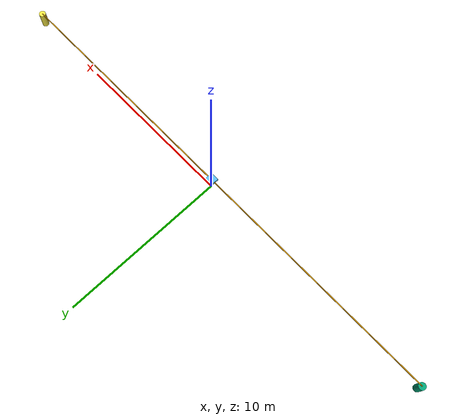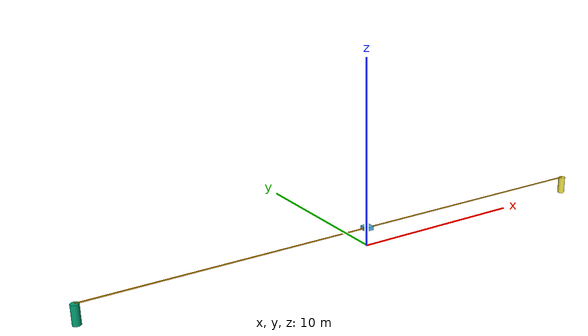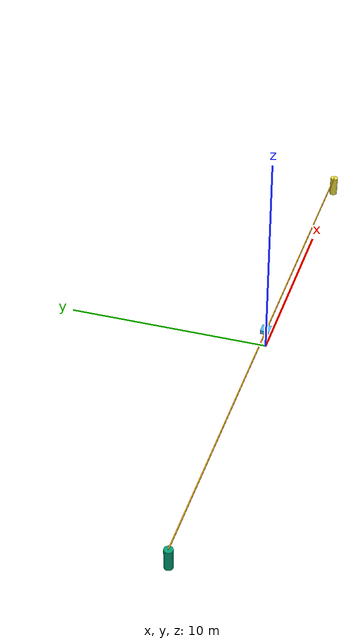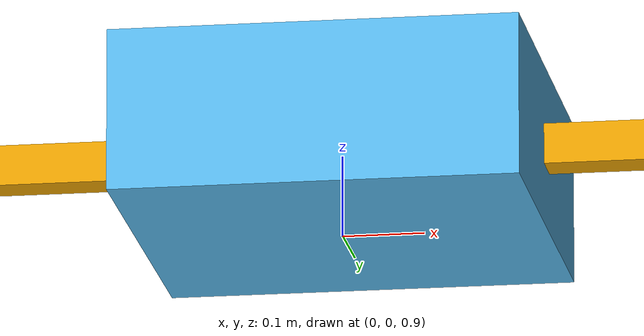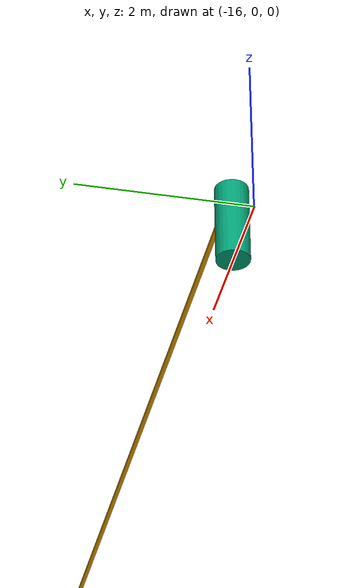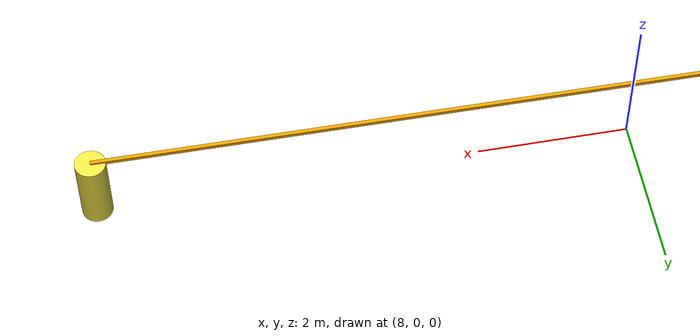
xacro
<?xml version="1.0"?>
<robot name="cartopole">
    <link name="slideBar">
        <visual>
            <geometry>
                <box size="30 0.05 0.05" />
            </geometry>
            <origin xyz="0 0 1" />
        </visual>
        <inertial>
            <mass value="100" />
            <inertia ixx="1.0" ixy="0.0" ixz="0.0" iyy="1.0" iyz="0.0" izz="1.0" />
        </inertial>
    </link>
    <link name="cart">
        <visual>
            <geometry>
                <box size="0.5 0.5 0.2" />
            </geometry>
            <origin xyz="0 0 1" />
        </visual>
        <inertial>
            <mass value="1" />
            <inertia ixx="1.0" ixy="0.0" ixz="0.0" iyy="1.0" iyz="0.0" izz="1.0" />
        </inertial>
    </link>

    <link name="leg1">
        <visual>
            <geometry>
                <cylinder radius="0.2" length="1.0" />
            </geometry>
            <origin xyz="0 0 0" />
        </visual>
        <collision>
            <geometry>
                <cylinder radius="0.2" length="1.0" />
            </geometry>
            <origin xyz="0 0 0" />
        </collision>
        <inertial>
            <mass value="1" />
            <inertia ixx="1.0" ixy="0.0" ixz="0.0" iyy="1.0" iyz="0.0" izz="1.0" />
        </inertial>
    </link>

    <link name="leg2">
        <visual>
            <geometry>
                <cylinder radius="0.2" length="1.0" />
            </geometry>
            <origin xyz="0 0 0" />
        </visual>
        <collision>
            <geometry>
                <cylinder radius="0.2" length="1.0" />
            </geometry>
            <origin xyz="0 0 0" />
        </collision>
        <inertial>
            <mass value="1" />
            <inertia ixx="1.0" ixy="0.0" ixz="0.0" iyy="1.0" iyz="0.0" izz="1.0" />
        </inertial>
    </link>

    <joint name="slider_to_cart" type="prismatic">
        <axis xyz="1 0 0" />
        <origin xyz="0.0 0.0 0.0" />
        <parent link="slideBar" />
        <child link="cart" />
        <limit effort="1000.0" lower="-15" upper="15" velocity="30" />
        <dynamics damping="0.0" friction="0.0" />
    </joint>
    <link name="imu">
        <inertial>
            <mass value="0.1" />
            <inertia ixx="1.0" ixy="0" ixz="0" iyy="1.0" iyz="0" izz="1.0" />
        </inertial>
    </link>
    <joint name="cart_to_imu" type="fixed">
        <origin xyz="0.0 0.0 0.0" />
        <parent link="cart" />
        <child link="imu" />
        <dynamics damping="0.0" friction="0.0" />
    </joint>

    <joint name="slider_to_leg1" type="fixed">
        <origin xyz="-15.0 0.0 0.5" />
        <parent link="slideBar" />
        <child link="leg1" />
        <dynamics damping="0.0" friction="0.0" />
    </joint>

    <joint name="slider_to_leg2" type="fixed">
        <origin xyz="15 0.0 0.5" />
        <parent link="slideBar" />
        <child link="leg2" />
        <dynamics damping="0.0" friction="0.0" />
    </joint>

    <gazebo reference="imu">
        <sensor name="cart_imu_sensor" type="imu">
            <always_on>1</always_on>
            <update_rate>10.0</update_rate>
            <visualize>true</visualize>
            <topic>imu</topic>
        </sensor>
    </gazebo>

    <ros2_control name="IgnitionSystem" type="system">
        <hardware>
            <plugin>ign_ros2_control/IgnitionSystem</plugin>
        </hardware>
        <joint name="slider_to_cart">
            <command_interface name="velocity">
                <param name="min">-15</param>
                <param name="max">15</param>
            </command_interface>
            <state_interface name="position" />
            <state_interface name="velocity" />
            <state_interface name="effort" />
        </joint>
        <sensor name="cart_imu_sensor">
            <state_interface name="orientation.x" />
            <state_interface name="orientation.y" />
            <state_interface name="orientation.z" />
            <state_interface name="orientation.w" />
            <state_interface name="angular_velocity.x" />
            <state_interface name="angular_velocity.y" />
            <state_interface name="angular_velocity.z" />
            <state_interface name="linear_acceleration.x" />
            <state_interface name="linear_acceleration.y" />
            <state_interface name="linear_acceleration.z" />
        </sensor>
    </ros2_control>

    <gazebo reference="slideBar">
        <visual>
            <material>
                <ambient>0 0.8 0 1</ambient>
                <diffuse>0 0.8 0 1</diffuse>
                <specular>0 0.8 0 1</specular>
            </material>
        </visual>
    </gazebo>

    <gazebo reference="cart">
        <visual>
            <material>
                <ambient>0 0 0.8 1</ambient>
                <diffuse>0 0 0.8 1</diffuse>
                <specular>0 0 0.8 1</specular>
            </material>
        </visual>
    </gazebo>

    <gazebo>
        <!-- Joint state publisher -->
        <plugin filename="ign_ros2_control-system"
            name="ign_ros2_control::IgnitionROS2ControlPlugin">
            <parameters>$(find car_description)/config/car2.yaml</parameters>
        </plugin>
        <plugin
            filename="ignition-gazebo-imu-system"
            name="ignition::gazebo::systems::Imu">
        </plugin>
    </gazebo>
</robot>
